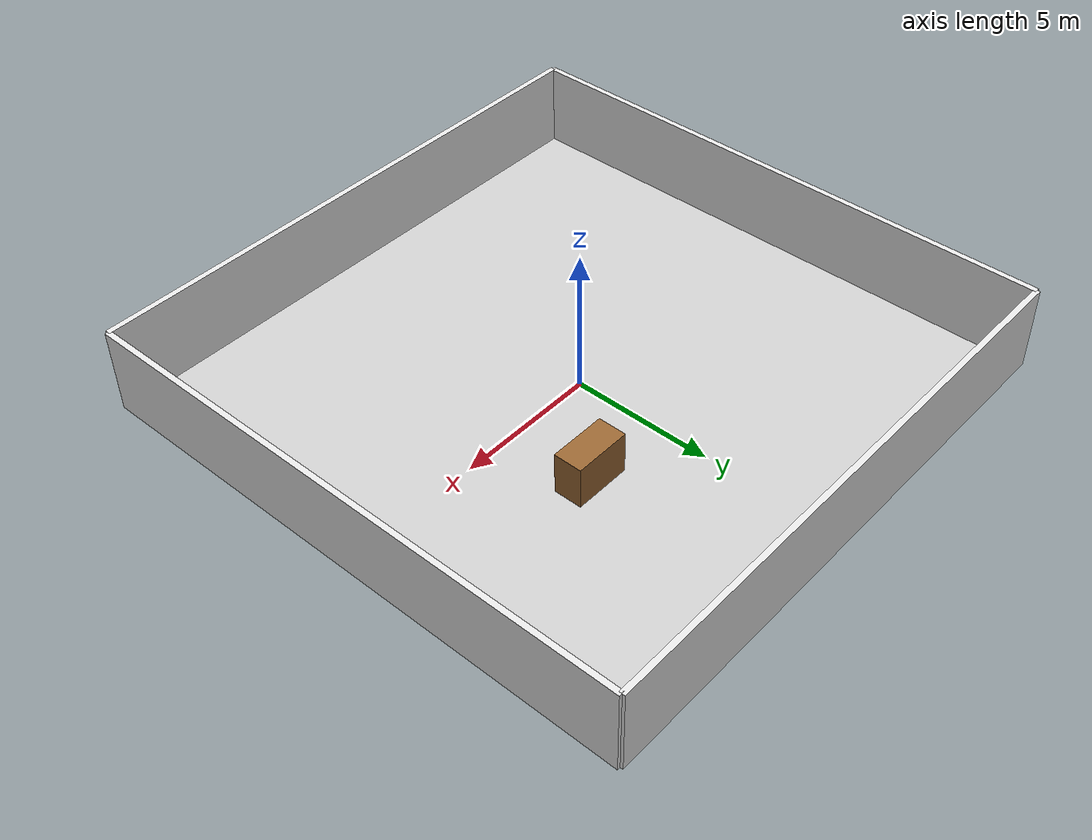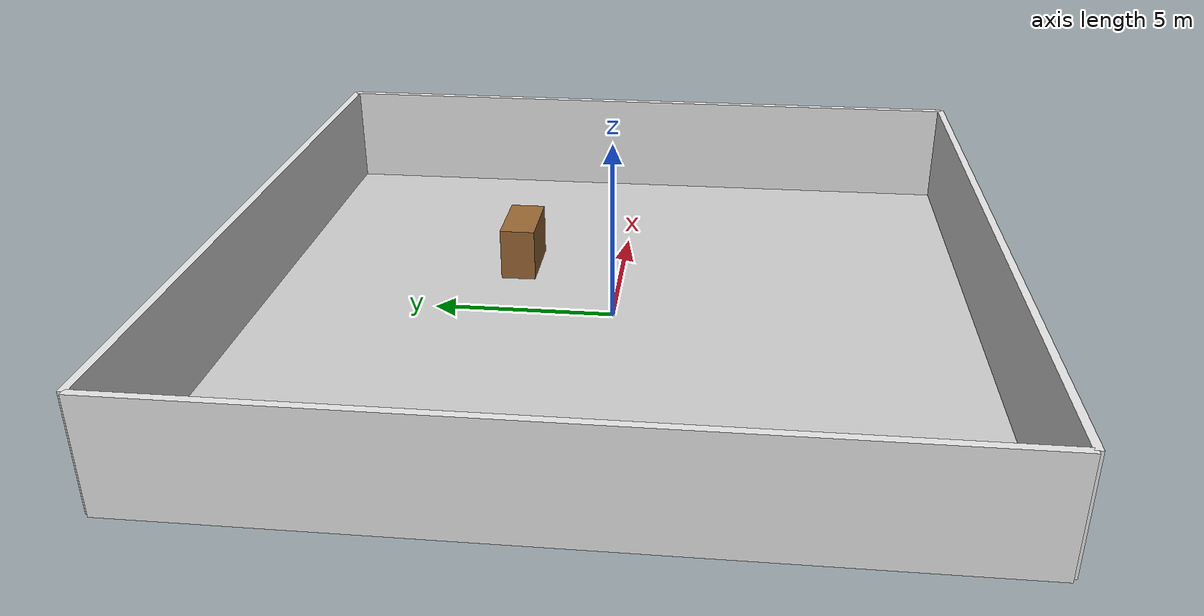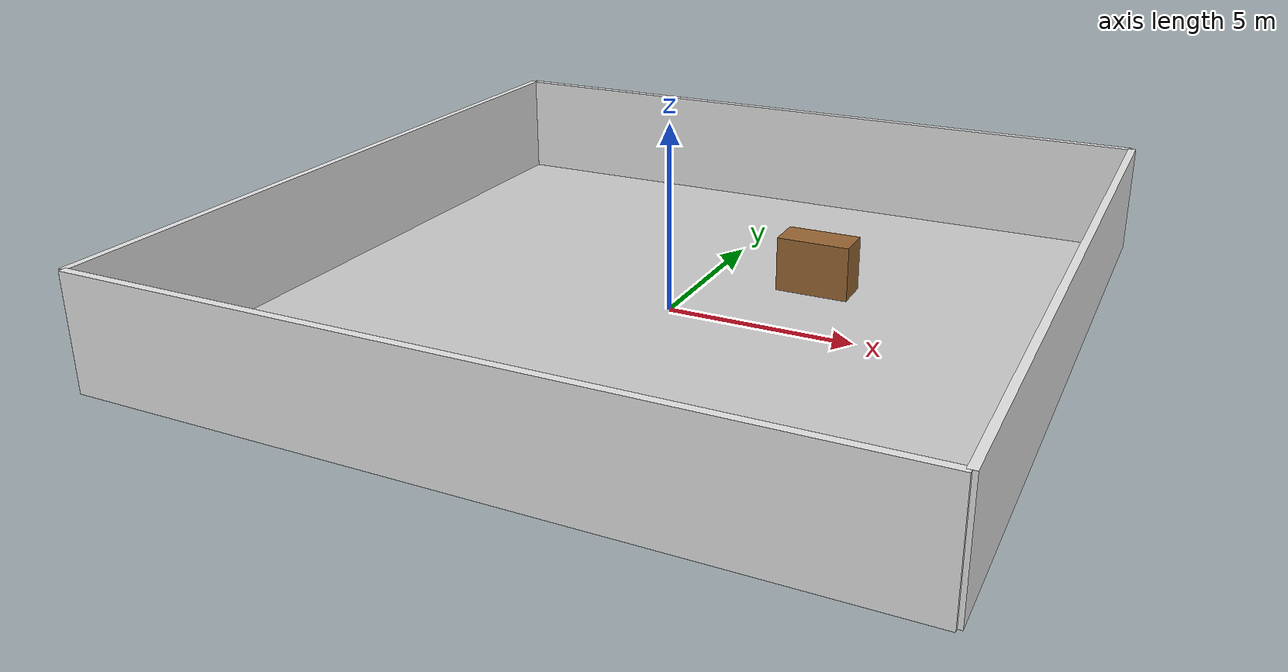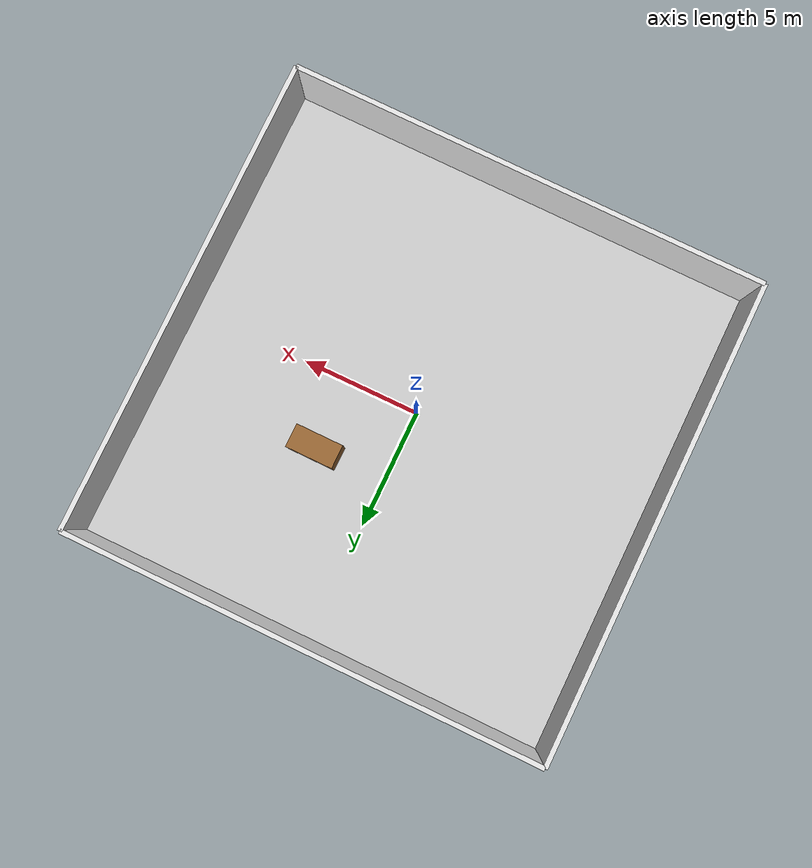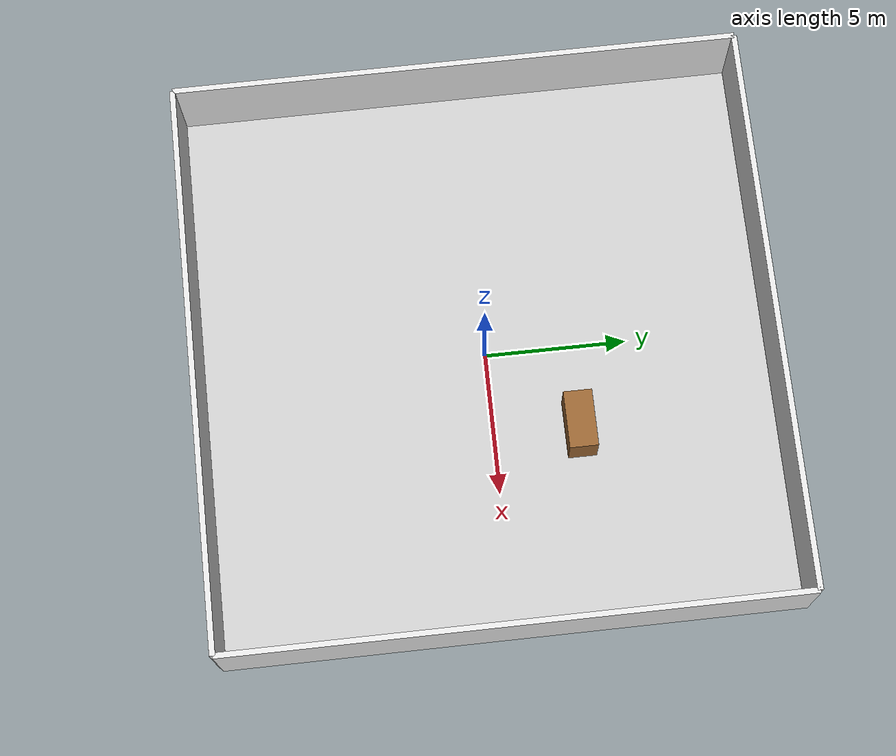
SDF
<?xml version="1.0"?>
<sdf version="1.6">
  <world name="indoor_world">

    <!-- Scene settings -->
    <scene>
      <ambient>0.4 0.4 0.4 1</ambient>
      <background>0.7 0.7 0.7 1</background>
      <shadows>true</shadows>
    </scene>

    <!-- Ánh sáng mặt trời -->
    <include>
      <uri>model://sun</uri>
    </include>

    <!-- Mặt đất (sàn nhà) -->
    <model name="floor">
      <pose>0 0 0 0 0 0</pose>
      <static>true</static>
      <link name="link">
        <collision name="collision">
          <geometry>
            <plane>
              <normal>0 0 1</normal>
              <size>20 20</size>
            </plane>
          </geometry>
        </collision>
        <visual name="visual">
          <geometry>
            <plane>
              <normal>0 0 1</normal>
              <size>20 20</size>
            </plane>
          </geometry>
          <material>
            <ambient>0.8 0.8 0.8 1</ambient>
            <diffuse>0.8 0.8 0.8 1</diffuse>
          </material>
        </visual>
      </link>
    </model>

    <!-- Tường phòng -->
    <!-- Tường trước -->
    <model name="wall_front">
      <pose>10 0 1.5 0 0 0</pose>
      <static>true</static>
      <link name="link">
        <collision name="collision">
          <geometry>
            <box>
              <size>0.2 20 3</size>
            </box>
          </geometry>
        </collision>
        <visual name="visual">
          <geometry>
            <box>
              <size>0.2 20 3</size>
            </box>
          </geometry>
          <material>
            <ambient>0.9 0.9 0.9 1</ambient>
          </material>
        </visual>
      </link>
    </model>

    <!-- Tường sau -->
    <model name="wall_back">
      <pose>-10 0 1.5 0 0 0</pose>
      <static>true</static>
      <link name="link">
        <collision name="collision">
          <geometry>
            <box>
              <size>0.2 20 3</size>
            </box>
          </geometry>
        </collision>
        <visual name="visual">
          <geometry>
            <box>
              <size>0.2 20 3</size>
            </box>
          </geometry>
          <material>
            <ambient>0.9 0.9 0.9 1</ambient>
          </material>
        </visual>
      </link>
    </model>

    <!-- Tường trái -->
    <model name="wall_left">
      <pose>0 10 1.5 0 0 0</pose>
      <static>true</static>
      <link name="link">
        <collision name="collision">
          <geometry>
            <box>
              <size>20 0.2 3</size>
            </box>
          </geometry>
        </collision>
        <visual name="visual">
          <geometry>
            <box>
              <size>20 0.2 3</size>
            </box>
          </geometry>
          <material>
            <ambient>0.9 0.9 0.9 1</ambient>
          </material>
        </visual>
      </link>
    </model>

    <!-- Tường phải -->
    <model name="wall_right">
      <pose>0 -10 1.5 0 0 0</pose>
      <static>true</static>
      <link name="link">
        <collision name="collision">
          <geometry>
            <box>
              <size>20 0.2 3</size>
            </box>
          </geometry>
        </collision>
        <visual name="visual">
          <geometry>
            <box>
              <size>20 0.2 3</size>
            </box>
          </geometry>
          <material>
            <ambient>0.9 0.9 0.9 1</ambient>
          </material>
        </visual>
      </link>
    </model>

    <!-- Vật cản trong phòng -->
    <model name="table">
      <pose>3 3 0.75 0 0 0</pose>
      <static>true</static>
      <link name="link">
        <collision name="collision">
          <geometry>
            <box>
              <size>2 1 1.5</size>
            </box>
          </geometry>
        </collision>
        <visual name="visual">
          <geometry>
            <box>
              <size>2 1 1.5</size>
            </box>
          </geometry>
          <material>
            <ambient>0.6 0.4 0.2 1</ambient>
          </material>
        </visual>
      </link>
    </model>

    <!-- Physics -->
    <physics type="ode">
      <max_step_size>0.001</max_step_size>
      <real_time_factor>1</real_time_factor>
      <real_time_update_rate>1000</real_time_update_rate>
      <gravity>0 0 -9.81</gravity>
    </physics>

  </world>
</sdf>
